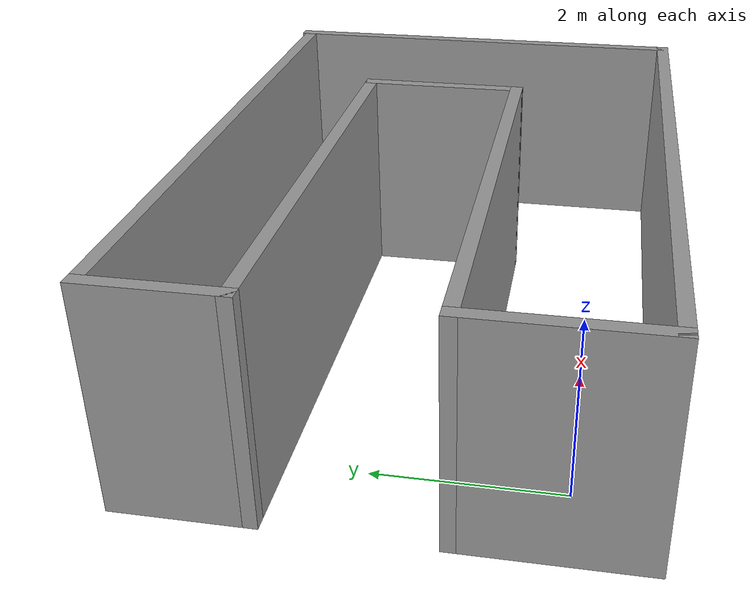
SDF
<?xml version='1.0'?>
<sdf version='1.6'>
  <model name='Maze1'>
    <pose frame=''>2.82739 1.76116 0 0 -0 0</pose>
    <link name='Wall_0'>
      <collision name='Wall_0_Collision'>
        <geometry>
          <box>
            <size>2 0.15 2.5</size>
          </box>
        </geometry>
        <pose frame=''>0 0 1.25 0 -0 0</pose>
      </collision>
      <visual name='Wall_0_Visual'>
        <pose frame=''>0 0 1.25 0 -0 0</pose>
        <geometry>
          <box>
            <size>2 0.15 2.5</size>
          </box>
        </geometry>
        <material>
          <script>
            <uri>file://media/materials/scripts/gazebo.material</uri>
            <name>Gazebo/Grey</name>
          </script>
          <ambient>1 1 1 1</ambient>
        </material>
        <meta>
          <layer>0</layer>
        </meta>
      </visual>
      <pose frame=''>-3.675 -1.625 0 0 -0 -1.5708</pose>
    </link>
    <link name='Wall_11'>
      <collision name='Wall_11_Collision'>
        <geometry>
          <box>
            <size>1.5 0.15 2.5</size>
          </box>
        </geometry>
        <pose frame=''>0 0 1.25 0 -0 0</pose>
      </collision>
      <visual name='Wall_11_Visual'>
        <pose frame=''>0 0 1.25 0 -0 0</pose>
        <geometry>
          <box>
            <size>1.5 0.15 2.5</size>
          </box>
        </geometry>
        <material>
          <script>
            <uri>file://media/materials/scripts/gazebo.material</uri>
            <name>Gazebo/Grey</name>
          </script>
          <ambient>1 1 1 1</ambient>
        </material>
        <meta>
          <layer>0</layer>
        </meta>
      </visual>
      <pose frame=''>-3.675 1.825 0 0 -0 1.5708</pose>
    </link>
    <link name='Wall_13'>
      <collision name='Wall_13_Collision'>
        <geometry>
          <box>
            <size>7.5 0.15 2.5</size>
          </box>
        </geometry>
        <pose frame=''>0 0 1.25 0 -0 0</pose>
      </collision>
      <visual name='Wall_13_Visual'>
        <pose frame=''>0 0 1.25 0 -0 0</pose>
        <geometry>
          <box>
            <size>7.5 0.15 2.5</size>
          </box>
        </geometry>
        <material>
          <script>
            <uri>file://media/materials/scripts/gazebo.material</uri>
            <name>Gazebo/Grey</name>
          </script>
          <ambient>1 1 1 1</ambient>
        </material>
        <meta>
          <layer>0</layer>
        </meta>
      </visual>
      <pose frame=''>-0 2.5 0 0 -0 0</pose>
    </link>
    <link name='Wall_2'>
      <collision name='Wall_2_Collision'>
        <geometry>
          <box>
            <size>7.5 0.15 2.5</size>
          </box>
        </geometry>
        <pose frame=''>0 0 1.25 0 -0 0</pose>
      </collision>
      <visual name='Wall_2_Visual'>
        <pose frame=''>0 0 1.25 0 -0 0</pose>
        <geometry>
          <box>
            <size>7.5 0.15 2.5</size>
          </box>
        </geometry>
        <material>
          <script>
            <uri>file://media/materials/scripts/gazebo.material</uri>
            <name>Gazebo/Grey</name>
          </script>
          <ambient>1 1 1 1</ambient>
        </material>
        <meta>
          <layer>0</layer>
        </meta>
      </visual>
      <pose frame=''>-0 -2.55 0 0 -0 0</pose>
    </link>
    <link name='Wall_4'>
      <collision name='Wall_4_Collision'>
        <geometry>
          <box>
            <size>5.25 0.15 2.5</size>
          </box>
        </geometry>
        <pose frame=''>0 0 1.25 0 -0 0</pose>
      </collision>
      <visual name='Wall_4_Visual'>
        <pose frame=''>0 0 1.25 0 -0 0</pose>
        <geometry>
          <box>
            <size>5.25 0.15 2.5</size>
          </box>
        </geometry>
        <material>
          <script>
            <uri>file://media/materials/scripts/gazebo.material</uri>
            <name>Gazebo/Grey</name>
          </script>
          <ambient>1 1 1 1</ambient>
        </material>
        <meta>
          <layer>0</layer>
        </meta>
      </visual>
      <pose frame=''>3.675 -0 0 0 -0 1.5708</pose>
    </link>
    <link name='Wall_7'>
      <collision name='Wall_7_Collision'>
        <geometry>
          <box>
            <size>5.5 0.15 2.5</size>
          </box>
        </geometry>
        <pose frame=''>0 0 1.25 0 -0 0</pose>
      </collision>
      <visual name='Wall_7_Visual'>
        <pose frame=''>0 0 1.25 0 -0 0</pose>
        <geometry>
          <box>
            <size>5.5 0.15 2.5</size>
          </box>
        </geometry>
        <material>
          <script>
            <uri>file://media/materials/scripts/gazebo.material</uri>
            <name>Gazebo/Grey</name>
          </script>
          <ambient>1 1 1 1</ambient>
        </material>
        <meta>
          <layer>0</layer>
        </meta>
      </visual>
      <pose frame=''>-1 -0.7 0 0 -0 0</pose>
    </link>
    <link name='Wall_8'>
      <collision name='Wall_8_Collision'>
        <geometry>
          <box>
            <size>2 0.15 2.5</size>
          </box>
        </geometry>
        <pose frame=''>0 0 1.25 0 -0 0</pose>
      </collision>
      <visual name='Wall_8_Visual'>
        <pose frame=''>0 0 1.25 0 -0 0</pose>
        <geometry>
          <box>
            <size>2 0.15 2.5</size>
          </box>
        </geometry>
        <material>
          <script>
            <uri>file://media/materials/scripts/gazebo.material</uri>
            <name>Gazebo/Grey</name>
          </script>
          <ambient>1 1 1 1</ambient>
        </material>
        <meta>
          <layer>0</layer>
        </meta>
      </visual>
      <pose frame=''>1.675 0.225 0 0 -0 1.5708</pose>
    </link>
    <link name='Wall_9'>
      <collision name='Wall_9_Collision'>
        <geometry>
          <box>
            <size>5.5 0.15 2.5</size>
          </box>
        </geometry>
        <pose frame=''>0 0 1.25 0 -0 0</pose>
      </collision>
      <visual name='Wall_9_Visual'>
        <pose frame=''>0 0 1.25 0 -0 0</pose>
        <geometry>
          <box>
            <size>5.5 0.15 2.5</size>
          </box>
        </geometry>
        <material>
          <script>
            <uri>file://media/materials/scripts/gazebo.material</uri>
            <name>Gazebo/Grey</name>
          </script>
          <ambient>1 1 1 1</ambient>
        </material>
        <meta>
          <layer>0</layer>
        </meta>
      </visual>
      <pose frame=''>-1 1.15 0 0 -0 3.14159</pose>
    </link>
    <static>1</static>
  </model>
</sdf>
